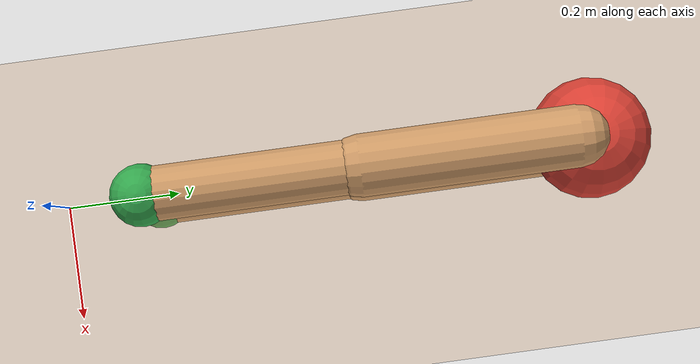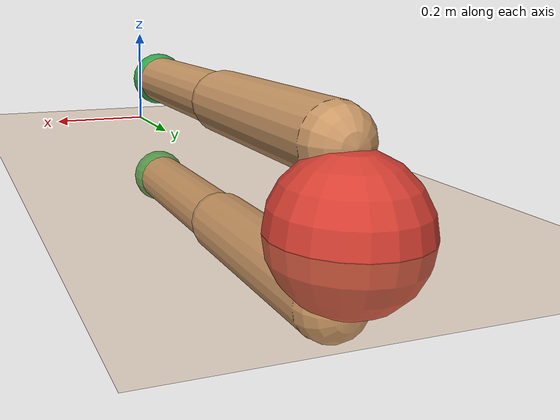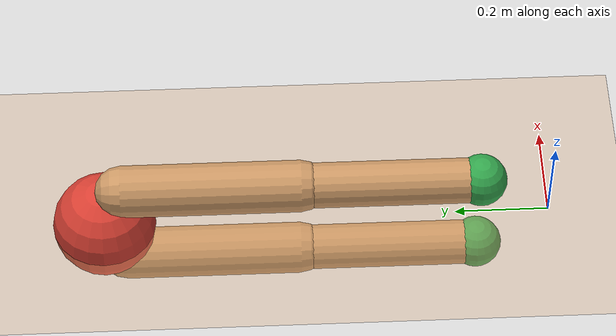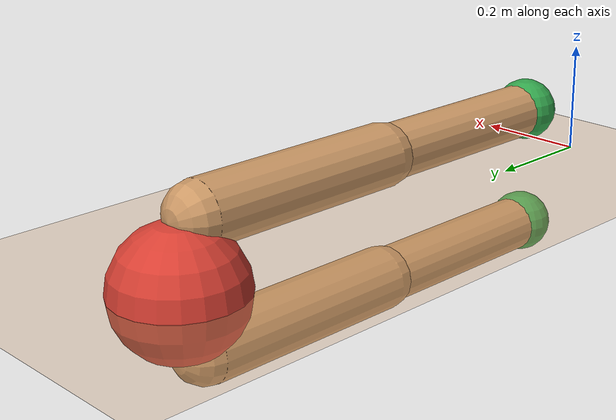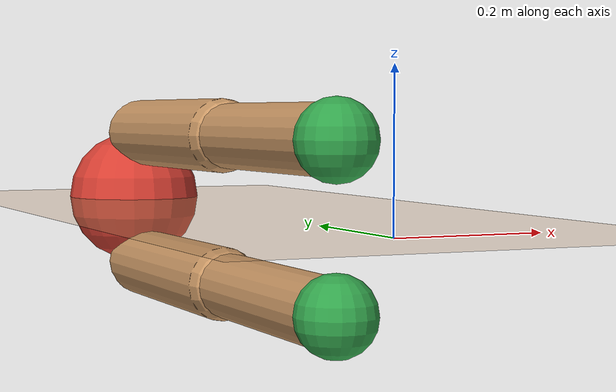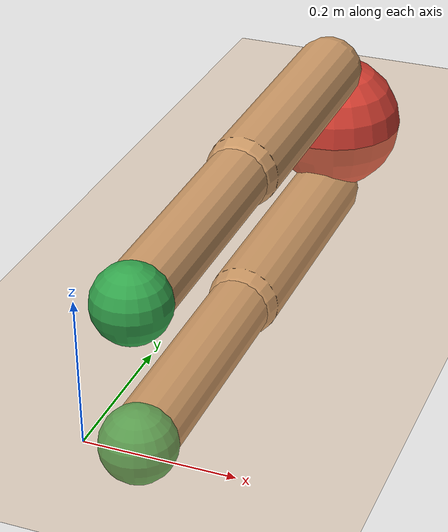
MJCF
<mujoco model="sprint_biped">
  <compiler angle="radian" coordinate="local" inertiafromgeom="true"/>
  <option integrator="RK4" gravity="0 -9.81 0" timestep="0.001" cone="elliptic"/>
  <default>
    <geom condim="3" friction="1.0 0.03 0.003" rgba="0.8 0.6 0.4 1"/>
    <joint damping="0.2" armature="0.01"/>
  </default>
  <asset>
    <texture type="skybox" builtin="gradient" rgb1="0.4 0.5 0.6" rgb2="0 0 0" width="128" height="128"/>
    <texture name="grid" type="2d" builtin="checker" width="256" height="256" rgb1="0.15 0.2 0.25" rgb2="0.2 0.25 0.3"/>
    <material name="grid" texture="grid" texrepeat="6 6" reflectance="0.05"/>
  </asset>
  <worldbody>
    <light directional="true" diffuse="0.6 0.6 0.6" pos="0 3 3" dir="0 -1 -1"/>
    <geom name="floor" type="plane" size="12 12 0.05" material="grid" pos="0 0 0"/>

    <body name="pelvis" pos="0 0.95 0">
      <freejoint name="root"/>
      <geom name="pelvis_geom" type="sphere" size="0.11" mass="35" rgba="0.85 0.25 0.2 1"/>

      <body name="r_thigh" pos="0 -0.04 0.11">
        <joint name="r_hip_flex" type="hinge" axis="1 0 0" range="-2.6 2.6"/>
        <geom name="r_thigh_geom" type="capsule" fromto="0 0 0 0 -0.38 0" size="0.055" mass="7.5"/>
        <body name="r_shank" pos="0 -0.38 0">
          <joint name="r_knee" type="hinge" axis="1 0 0" range="-2.7 0.05"/>
          <geom name="r_shank_geom" type="capsule" fromto="0 0 0 0 -0.38 0" size="0.048" mass="3.5"/>
          <body name="r_foot" pos="0 -0.38 0">
            <joint name="r_ankle" type="hinge" axis="1 0 0" range="-1.2 1.0"/>
            <geom name="r_foot_geom" type="sphere" size="0.055" mass="1.2" friction="1.1 0.04 0.004" rgba="0.2 0.65 0.3 1"/>
          </body>
        </body>
      </body>

      <body name="l_thigh" pos="0 -0.04 -0.11">
        <joint name="l_hip_flex" type="hinge" axis="1 0 0" range="-2.6 2.6"/>
        <geom name="l_thigh_geom" type="capsule" fromto="0 0 0 0 -0.38 0" size="0.055" mass="7.5"/>
        <body name="l_shank" pos="0 -0.38 0">
          <joint name="l_knee" type="hinge" axis="1 0 0" range="-2.7 0.05"/>
          <geom name="l_shank_geom" type="capsule" fromto="0 0 0 0 -0.38 0" size="0.048" mass="3.5"/>
          <body name="l_foot" pos="0 -0.38 0">
            <joint name="l_ankle" type="hinge" axis="1 0 0" range="-1.2 1.0"/>
            <geom name="l_foot_geom" type="sphere" size="0.055" mass="1.2" friction="1.1 0.04 0.004" rgba="0.2 0.65 0.3 1"/>
          </body>
        </body>
      </body>
    </body>
  </worldbody>
</mujoco>
